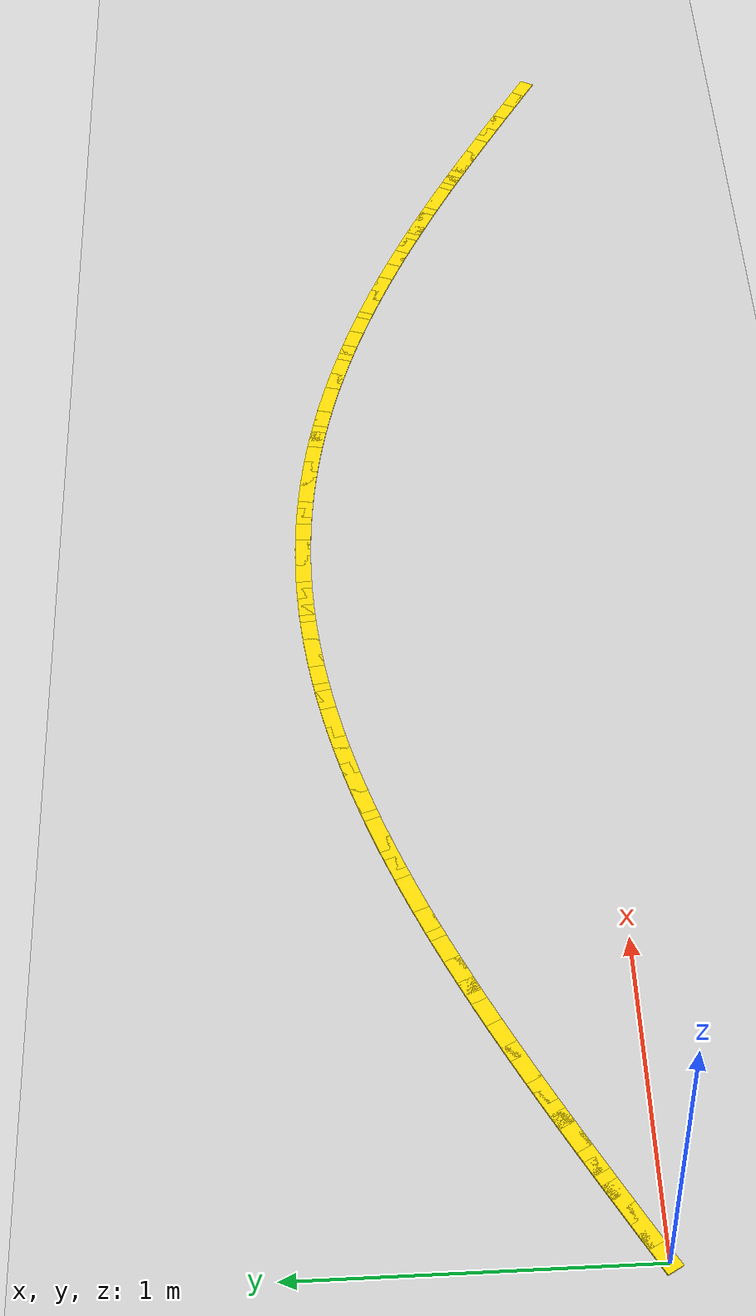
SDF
<?xml version="1.0" ?>
<sdf version="1.6">
  <world name="yahboom_line">

    <include><uri>model://sun</uri></include>
    <include><uri>model://ground_plane</uri></include>

    <scene>
      <ambient>0.6 0.6 0.6 1</ambient>
      <background>0.7 0.7 0.7 1</background>
      <shadows>false</shadows>
    </scene>

    <model name="line_0">
      <static>true</static>
      <pose>0.0357 0.0202 0.003 0 0 0.5145</pose>
      <link name="link">
        <visual name="v">
          <geometry><box><size>0.1313 0.05 0.006</size></box></geometry>
          <material><ambient>1 0.85 0 1</ambient><diffuse>1 0.85 0 1</diffuse></material>
        </visual>
      </link>
    </model>
    <model name="line_1">
      <static>true</static>
      <pose>0.1071 0.0605 0.003 0 0 0.5136</pose>
      <link name="link">
        <visual name="v">
          <geometry><box><size>0.1312 0.05 0.006</size></box></geometry>
          <material><ambient>1 0.85 0 1</ambient><diffuse>1 0.85 0 1</diffuse></material>
        </visual>
      </link>
    </model>
    <model name="line_2">
      <static>true</static>
      <pose>0.1786 0.1007 0.003 0 0 0.5119</pose>
      <link name="link">
        <visual name="v">
          <geometry><box><size>0.1311 0.05 0.006</size></box></geometry>
          <material><ambient>1 0.85 0 1</ambient><diffuse>1 0.85 0 1</diffuse></material>
        </visual>
      </link>
    </model>
    <model name="line_3">
      <static>true</static>
      <pose>0.2500 0.1408 0.003 0 0 0.5093</pose>
      <link name="link">
        <visual name="v">
          <geometry><box><size>0.1309 0.05 0.006</size></box></geometry>
          <material><ambient>1 0.85 0 1</ambient><diffuse>1 0.85 0 1</diffuse></material>
        </visual>
      </link>
    </model>
    <model name="line_4">
      <static>true</static>
      <pose>0.3214 0.1805 0.003 0 0 0.5059</pose>
      <link name="link">
        <visual name="v">
          <geometry><box><size>0.1306 0.05 0.006</size></box></geometry>
          <material><ambient>1 0.85 0 1</ambient><diffuse>1 0.85 0 1</diffuse></material>
        </visual>
      </link>
    </model>
    <model name="line_5">
      <static>true</static>
      <pose>0.3929 0.2199 0.003 0 0 0.5015</pose>
      <link name="link">
        <visual name="v">
          <geometry><box><size>0.1303 0.05 0.006</size></box></geometry>
          <material><ambient>1 0.85 0 1</ambient><diffuse>1 0.85 0 1</diffuse></material>
        </visual>
      </link>
    </model>
    <model name="line_6">
      <static>true</static>
      <pose>0.4643 0.2588 0.003 0 0 0.4963</pose>
      <link name="link">
        <visual name="v">
          <geometry><box><size>0.1300 0.05 0.006</size></box></geometry>
          <material><ambient>1 0.85 0 1</ambient><diffuse>1 0.85 0 1</diffuse></material>
        </visual>
      </link>
    </model>
    <model name="line_7">
      <static>true</static>
      <pose>0.5357 0.2972 0.003 0 0 0.4902</pose>
      <link name="link">
        <visual name="v">
          <geometry><box><size>0.1295 0.05 0.006</size></box></geometry>
          <material><ambient>1 0.85 0 1</ambient><diffuse>1 0.85 0 1</diffuse></material>
        </visual>
      </link>
    </model>
    <model name="line_8">
      <static>true</static>
      <pose>0.6071 0.3350 0.003 0 0 0.4833</pose>
      <link name="link">
        <visual name="v">
          <geometry><box><size>0.1291 0.05 0.006</size></box></geometry>
          <material><ambient>1 0.85 0 1</ambient><diffuse>1 0.85 0 1</diffuse></material>
        </visual>
      </link>
    </model>
    <model name="line_9">
      <static>true</static>
      <pose>0.6786 0.3721 0.003 0 0 0.4754</pose>
      <link name="link">
        <visual name="v">
          <geometry><box><size>0.1285 0.05 0.006</size></box></geometry>
          <material><ambient>1 0.85 0 1</ambient><diffuse>1 0.85 0 1</diffuse></material>
        </visual>
      </link>
    </model>
    <model name="line_10">
      <static>true</static>
      <pose>0.7500 0.4085 0.003 0 0 0.4667</pose>
      <link name="link">
        <visual name="v">
          <geometry><box><size>0.1280 0.05 0.006</size></box></geometry>
          <material><ambient>1 0.85 0 1</ambient><diffuse>1 0.85 0 1</diffuse></material>
        </visual>
      </link>
    </model>
    <model name="line_11">
      <static>true</static>
      <pose>0.8214 0.4440 0.003 0 0 0.4571</pose>
      <link name="link">
        <visual name="v">
          <geometry><box><size>0.1274 0.05 0.006</size></box></geometry>
          <material><ambient>1 0.85 0 1</ambient><diffuse>1 0.85 0 1</diffuse></material>
        </visual>
      </link>
    </model>
    <model name="line_12">
      <static>true</static>
      <pose>0.8929 0.4787 0.003 0 0 0.4465</pose>
      <link name="link">
        <visual name="v">
          <geometry><box><size>0.1267 0.05 0.006</size></box></geometry>
          <material><ambient>1 0.85 0 1</ambient><diffuse>1 0.85 0 1</diffuse></material>
        </visual>
      </link>
    </model>
    <model name="line_13">
      <static>true</static>
      <pose>0.9643 0.5124 0.003 0 0 0.4351</pose>
      <link name="link">
        <visual name="v">
          <geometry><box><size>0.1260 0.05 0.006</size></box></geometry>
          <material><ambient>1 0.85 0 1</ambient><diffuse>1 0.85 0 1</diffuse></material>
        </visual>
      </link>
    </model>
    <model name="line_14">
      <static>true</static>
      <pose>1.0357 0.5451 0.003 0 0 0.4228</pose>
      <link name="link">
        <visual name="v">
          <geometry><box><size>0.1253 0.05 0.006</size></box></geometry>
          <material><ambient>1 0.85 0 1</ambient><diffuse>1 0.85 0 1</diffuse></material>
        </visual>
      </link>
    </model>
    <model name="line_15">
      <static>true</static>
      <pose>1.1071 0.5766 0.003 0 0 0.4095</pose>
      <link name="link">
        <visual name="v">
          <geometry><box><size>0.1246 0.05 0.006</size></box></geometry>
          <material><ambient>1 0.85 0 1</ambient><diffuse>1 0.85 0 1</diffuse></material>
        </visual>
      </link>
    </model>
    <model name="line_16">
      <static>true</static>
      <pose>1.1786 0.6071 0.003 0 0 0.3954</pose>
      <link name="link">
        <visual name="v">
          <geometry><box><size>0.1238 0.05 0.006</size></box></geometry>
          <material><ambient>1 0.85 0 1</ambient><diffuse>1 0.85 0 1</diffuse></material>
        </visual>
      </link>
    </model>
    <model name="line_17">
      <static>true</static>
      <pose>1.2500 0.6362 0.003 0 0 0.3804</pose>
      <link name="link">
        <visual name="v">
          <geometry><box><size>0.1231 0.05 0.006</size></box></geometry>
          <material><ambient>1 0.85 0 1</ambient><diffuse>1 0.85 0 1</diffuse></material>
        </visual>
      </link>
    </model>
    <model name="line_18">
      <static>true</static>
      <pose>1.3214 0.6641 0.003 0 0 0.3644</pose>
      <link name="link">
        <visual name="v">
          <geometry><box><size>0.1223 0.05 0.006</size></box></geometry>
          <material><ambient>1 0.85 0 1</ambient><diffuse>1 0.85 0 1</diffuse></material>
        </visual>
      </link>
    </model>
    <model name="line_19">
      <static>true</static>
      <pose>1.3929 0.6907 0.003 0 0 0.3477</pose>
      <link name="link">
        <visual name="v">
          <geometry><box><size>0.1216 0.05 0.006</size></box></geometry>
          <material><ambient>1 0.85 0 1</ambient><diffuse>1 0.85 0 1</diffuse></material>
        </visual>
      </link>
    </model>
    <model name="line_20">
      <static>true</static>
      <pose>1.4643 0.7159 0.003 0 0 0.3300</pose>
      <link name="link">
        <visual name="v">
          <geometry><box><size>0.1208 0.05 0.006</size></box></geometry>
          <material><ambient>1 0.85 0 1</ambient><diffuse>1 0.85 0 1</diffuse></material>
        </visual>
      </link>
    </model>
    <model name="line_21">
      <static>true</static>
      <pose>1.5357 0.7396 0.003 0 0 0.3115</pose>
      <link name="link">
        <visual name="v">
          <geometry><box><size>0.1201 0.05 0.006</size></box></geometry>
          <material><ambient>1 0.85 0 1</ambient><diffuse>1 0.85 0 1</diffuse></material>
        </visual>
      </link>
    </model>
    <model name="line_22">
      <static>true</static>
      <pose>1.6071 0.7619 0.003 0 0 0.2922</pose>
      <link name="link">
        <visual name="v">
          <geometry><box><size>0.1193 0.05 0.006</size></box></geometry>
          <material><ambient>1 0.85 0 1</ambient><diffuse>1 0.85 0 1</diffuse></material>
        </visual>
      </link>
    </model>
    <model name="line_23">
      <static>true</static>
      <pose>1.6786 0.7826 0.003 0 0 0.2721</pose>
      <link name="link">
        <visual name="v">
          <geometry><box><size>0.1187 0.05 0.006</size></box></geometry>
          <material><ambient>1 0.85 0 1</ambient><diffuse>1 0.85 0 1</diffuse></material>
        </visual>
      </link>
    </model>
    <model name="line_24">
      <static>true</static>
      <pose>1.7500 0.8017 0.003 0 0 0.2513</pose>
      <link name="link">
        <visual name="v">
          <geometry><box><size>0.1180 0.05 0.006</size></box></geometry>
          <material><ambient>1 0.85 0 1</ambient><diffuse>1 0.85 0 1</diffuse></material>
        </visual>
      </link>
    </model>
    <model name="line_25">
      <static>true</static>
      <pose>1.8214 0.8192 0.003 0 0 0.2297</pose>
      <link name="link">
        <visual name="v">
          <geometry><box><size>0.1174 0.05 0.006</size></box></geometry>
          <material><ambient>1 0.85 0 1</ambient><diffuse>1 0.85 0 1</diffuse></material>
        </visual>
      </link>
    </model>
    <model name="line_26">
      <static>true</static>
      <pose>1.8929 0.8351 0.003 0 0 0.2075</pose>
      <link name="link">
        <visual name="v">
          <geometry><box><size>0.1168 0.05 0.006</size></box></geometry>
          <material><ambient>1 0.85 0 1</ambient><diffuse>1 0.85 0 1</diffuse></material>
        </visual>
      </link>
    </model>
    <model name="line_27">
      <static>true</static>
      <pose>1.9643 0.8493 0.003 0 0 0.1846</pose>
      <link name="link">
        <visual name="v">
          <geometry><box><size>0.1163 0.05 0.006</size></box></geometry>
          <material><ambient>1 0.85 0 1</ambient><diffuse>1 0.85 0 1</diffuse></material>
        </visual>
      </link>
    </model>
    <model name="line_28">
      <static>true</static>
      <pose>2.0357 0.8618 0.003 0 0 0.1612</pose>
      <link name="link">
        <visual name="v">
          <geometry><box><size>0.1158 0.05 0.006</size></box></geometry>
          <material><ambient>1 0.85 0 1</ambient><diffuse>1 0.85 0 1</diffuse></material>
        </visual>
      </link>
    </model>
    <model name="line_29">
      <static>true</static>
      <pose>2.1071 0.8725 0.003 0 0 0.1373</pose>
      <link name="link">
        <visual name="v">
          <geometry><box><size>0.1154 0.05 0.006</size></box></geometry>
          <material><ambient>1 0.85 0 1</ambient><diffuse>1 0.85 0 1</diffuse></material>
        </visual>
      </link>
    </model>
    <model name="line_30">
      <static>true</static>
      <pose>2.1786 0.8815 0.003 0 0 0.1129</pose>
      <link name="link">
        <visual name="v">
          <geometry><box><size>0.1150 0.05 0.006</size></box></geometry>
          <material><ambient>1 0.85 0 1</ambient><diffuse>1 0.85 0 1</diffuse></material>
        </visual>
      </link>
    </model>
    <model name="line_31">
      <static>true</static>
      <pose>2.2500 0.8887 0.003 0 0 0.0882</pose>
      <link name="link">
        <visual name="v">
          <geometry><box><size>0.1147 0.05 0.006</size></box></geometry>
          <material><ambient>1 0.85 0 1</ambient><diffuse>1 0.85 0 1</diffuse></material>
        </visual>
      </link>
    </model>
    <model name="line_32">
      <static>true</static>
      <pose>2.3214 0.8941 0.003 0 0 0.0632</pose>
      <link name="link">
        <visual name="v">
          <geometry><box><size>0.1145 0.05 0.006</size></box></geometry>
          <material><ambient>1 0.85 0 1</ambient><diffuse>1 0.85 0 1</diffuse></material>
        </visual>
      </link>
    </model>
    <model name="line_33">
      <static>true</static>
      <pose>2.3929 0.8977 0.003 0 0 0.0380</pose>
      <link name="link">
        <visual name="v">
          <geometry><box><size>0.1144 0.05 0.006</size></box></geometry>
          <material><ambient>1 0.85 0 1</ambient><diffuse>1 0.85 0 1</diffuse></material>
        </visual>
      </link>
    </model>
    <model name="line_34">
      <static>true</static>
      <pose>2.4643 0.8995 0.003 0 0 0.0127</pose>
      <link name="link">
        <visual name="v">
          <geometry><box><size>0.1143 0.05 0.006</size></box></geometry>
          <material><ambient>1 0.85 0 1</ambient><diffuse>1 0.85 0 1</diffuse></material>
        </visual>
      </link>
    </model>
    <model name="line_35">
      <static>true</static>
      <pose>2.5357 0.8995 0.003 0 0 -0.0127</pose>
      <link name="link">
        <visual name="v">
          <geometry><box><size>0.1143 0.05 0.006</size></box></geometry>
          <material><ambient>1 0.85 0 1</ambient><diffuse>1 0.85 0 1</diffuse></material>
        </visual>
      </link>
    </model>
    <model name="line_36">
      <static>true</static>
      <pose>2.6071 0.8977 0.003 0 0 -0.0380</pose>
      <link name="link">
        <visual name="v">
          <geometry><box><size>0.1144 0.05 0.006</size></box></geometry>
          <material><ambient>1 0.85 0 1</ambient><diffuse>1 0.85 0 1</diffuse></material>
        </visual>
      </link>
    </model>
    <model name="line_37">
      <static>true</static>
      <pose>2.6786 0.8941 0.003 0 0 -0.0632</pose>
      <link name="link">
        <visual name="v">
          <geometry><box><size>0.1145 0.05 0.006</size></box></geometry>
          <material><ambient>1 0.85 0 1</ambient><diffuse>1 0.85 0 1</diffuse></material>
        </visual>
      </link>
    </model>
    <model name="line_38">
      <static>true</static>
      <pose>2.7500 0.8887 0.003 0 0 -0.0882</pose>
      <link name="link">
        <visual name="v">
          <geometry><box><size>0.1147 0.05 0.006</size></box></geometry>
          <material><ambient>1 0.85 0 1</ambient><diffuse>1 0.85 0 1</diffuse></material>
        </visual>
      </link>
    </model>
    <model name="line_39">
      <static>true</static>
      <pose>2.8214 0.8815 0.003 0 0 -0.1129</pose>
      <link name="link">
        <visual name="v">
          <geometry><box><size>0.1150 0.05 0.006</size></box></geometry>
          <material><ambient>1 0.85 0 1</ambient><diffuse>1 0.85 0 1</diffuse></material>
        </visual>
      </link>
    </model>
    <model name="line_40">
      <static>true</static>
      <pose>2.8929 0.8725 0.003 0 0 -0.1373</pose>
      <link name="link">
        <visual name="v">
          <geometry><box><size>0.1154 0.05 0.006</size></box></geometry>
          <material><ambient>1 0.85 0 1</ambient><diffuse>1 0.85 0 1</diffuse></material>
        </visual>
      </link>
    </model>
    <model name="line_41">
      <static>true</static>
      <pose>2.9643 0.8618 0.003 0 0 -0.1612</pose>
      <link name="link">
        <visual name="v">
          <geometry><box><size>0.1158 0.05 0.006</size></box></geometry>
          <material><ambient>1 0.85 0 1</ambient><diffuse>1 0.85 0 1</diffuse></material>
        </visual>
      </link>
    </model>
    <model name="line_42">
      <static>true</static>
      <pose>3.0357 0.8493 0.003 0 0 -0.1846</pose>
      <link name="link">
        <visual name="v">
          <geometry><box><size>0.1163 0.05 0.006</size></box></geometry>
          <material><ambient>1 0.85 0 1</ambient><diffuse>1 0.85 0 1</diffuse></material>
        </visual>
      </link>
    </model>
    <model name="line_43">
      <static>true</static>
      <pose>3.1071 0.8351 0.003 0 0 -0.2075</pose>
      <link name="link">
        <visual name="v">
          <geometry><box><size>0.1168 0.05 0.006</size></box></geometry>
          <material><ambient>1 0.85 0 1</ambient><diffuse>1 0.85 0 1</diffuse></material>
        </visual>
      </link>
    </model>
    <model name="line_44">
      <static>true</static>
      <pose>3.1786 0.8192 0.003 0 0 -0.2297</pose>
      <link name="link">
        <visual name="v">
          <geometry><box><size>0.1174 0.05 0.006</size></box></geometry>
          <material><ambient>1 0.85 0 1</ambient><diffuse>1 0.85 0 1</diffuse></material>
        </visual>
      </link>
    </model>
    <model name="line_45">
      <static>true</static>
      <pose>3.2500 0.8017 0.003 0 0 -0.2513</pose>
      <link name="link">
        <visual name="v">
          <geometry><box><size>0.1180 0.05 0.006</size></box></geometry>
          <material><ambient>1 0.85 0 1</ambient><diffuse>1 0.85 0 1</diffuse></material>
        </visual>
      </link>
    </model>
    <model name="line_46">
      <static>true</static>
      <pose>3.3214 0.7826 0.003 0 0 -0.2721</pose>
      <link name="link">
        <visual name="v">
          <geometry><box><size>0.1187 0.05 0.006</size></box></geometry>
          <material><ambient>1 0.85 0 1</ambient><diffuse>1 0.85 0 1</diffuse></material>
        </visual>
      </link>
    </model>
    <model name="line_47">
      <static>true</static>
      <pose>3.3929 0.7619 0.003 0 0 -0.2922</pose>
      <link name="link">
        <visual name="v">
          <geometry><box><size>0.1193 0.05 0.006</size></box></geometry>
          <material><ambient>1 0.85 0 1</ambient><diffuse>1 0.85 0 1</diffuse></material>
        </visual>
      </link>
    </model>
    <model name="line_48">
      <static>true</static>
      <pose>3.4643 0.7396 0.003 0 0 -0.3115</pose>
      <link name="link">
        <visual name="v">
          <geometry><box><size>0.1201 0.05 0.006</size></box></geometry>
          <material><ambient>1 0.85 0 1</ambient><diffuse>1 0.85 0 1</diffuse></material>
        </visual>
      </link>
    </model>
    <model name="line_49">
      <static>true</static>
      <pose>3.5357 0.7159 0.003 0 0 -0.3300</pose>
      <link name="link">
        <visual name="v">
          <geometry><box><size>0.1208 0.05 0.006</size></box></geometry>
          <material><ambient>1 0.85 0 1</ambient><diffuse>1 0.85 0 1</diffuse></material>
        </visual>
      </link>
    </model>
    <model name="line_50">
      <static>true</static>
      <pose>3.6071 0.6907 0.003 0 0 -0.3477</pose>
      <link name="link">
        <visual name="v">
          <geometry><box><size>0.1216 0.05 0.006</size></box></geometry>
          <material><ambient>1 0.85 0 1</ambient><diffuse>1 0.85 0 1</diffuse></material>
        </visual>
      </link>
    </model>
    <model name="line_51">
      <static>true</static>
      <pose>3.6786 0.6641 0.003 0 0 -0.3644</pose>
      <link name="link">
        <visual name="v">
          <geometry><box><size>0.1223 0.05 0.006</size></box></geometry>
          <material><ambient>1 0.85 0 1</ambient><diffuse>1 0.85 0 1</diffuse></material>
        </visual>
      </link>
    </model>
    <model name="line_52">
      <static>true</static>
      <pose>3.7500 0.6362 0.003 0 0 -0.3804</pose>
      <link name="link">
        <visual name="v">
          <geometry><box><size>0.1231 0.05 0.006</size></box></geometry>
          <material><ambient>1 0.85 0 1</ambient><diffuse>1 0.85 0 1</diffuse></material>
        </visual>
      </link>
    </model>
    <model name="line_53">
      <static>true</static>
      <pose>3.8214 0.6071 0.003 0 0 -0.3954</pose>
      <link name="link">
        <visual name="v">
          <geometry><box><size>0.1238 0.05 0.006</size></box></geometry>
          <material><ambient>1 0.85 0 1</ambient><diffuse>1 0.85 0 1</diffuse></material>
        </visual>
      </link>
    </model>
    <model name="line_54">
      <static>true</static>
      <pose>3.8929 0.5766 0.003 0 0 -0.4095</pose>
      <link name="link">
        <visual name="v">
          <geometry><box><size>0.1246 0.05 0.006</size></box></geometry>
          <material><ambient>1 0.85 0 1</ambient><diffuse>1 0.85 0 1</diffuse></material>
        </visual>
      </link>
    </model>
    <model name="line_55">
      <static>true</static>
      <pose>3.9643 0.5451 0.003 0 0 -0.4228</pose>
      <link name="link">
        <visual name="v">
          <geometry><box><size>0.1253 0.05 0.006</size></box></geometry>
          <material><ambient>1 0.85 0 1</ambient><diffuse>1 0.85 0 1</diffuse></material>
        </visual>
      </link>
    </model>
    <model name="line_56">
      <static>true</static>
      <pose>4.0357 0.5124 0.003 0 0 -0.4351</pose>
      <link name="link">
        <visual name="v">
          <geometry><box><size>0.1260 0.05 0.006</size></box></geometry>
          <material><ambient>1 0.85 0 1</ambient><diffuse>1 0.85 0 1</diffuse></material>
        </visual>
      </link>
    </model>
    <model name="line_57">
      <static>true</static>
      <pose>4.1071 0.4787 0.003 0 0 -0.4465</pose>
      <link name="link">
        <visual name="v">
          <geometry><box><size>0.1267 0.05 0.006</size></box></geometry>
          <material><ambient>1 0.85 0 1</ambient><diffuse>1 0.85 0 1</diffuse></material>
        </visual>
      </link>
    </model>
    <model name="line_58">
      <static>true</static>
      <pose>4.1786 0.4440 0.003 0 0 -0.4571</pose>
      <link name="link">
        <visual name="v">
          <geometry><box><size>0.1274 0.05 0.006</size></box></geometry>
          <material><ambient>1 0.85 0 1</ambient><diffuse>1 0.85 0 1</diffuse></material>
        </visual>
      </link>
    </model>
    <model name="line_59">
      <static>true</static>
      <pose>4.2500 0.4085 0.003 0 0 -0.4667</pose>
      <link name="link">
        <visual name="v">
          <geometry><box><size>0.1280 0.05 0.006</size></box></geometry>
          <material><ambient>1 0.85 0 1</ambient><diffuse>1 0.85 0 1</diffuse></material>
        </visual>
      </link>
    </model>
    <model name="line_60">
      <static>true</static>
      <pose>4.3214 0.3721 0.003 0 0 -0.4754</pose>
      <link name="link">
        <visual name="v">
          <geometry><box><size>0.1285 0.05 0.006</size></box></geometry>
          <material><ambient>1 0.85 0 1</ambient><diffuse>1 0.85 0 1</diffuse></material>
        </visual>
      </link>
    </model>
    <model name="line_61">
      <static>true</static>
      <pose>4.3929 0.3350 0.003 0 0 -0.4833</pose>
      <link name="link">
        <visual name="v">
          <geometry><box><size>0.1291 0.05 0.006</size></box></geometry>
          <material><ambient>1 0.85 0 1</ambient><diffuse>1 0.85 0 1</diffuse></material>
        </visual>
      </link>
    </model>
    <model name="line_62">
      <static>true</static>
      <pose>4.4643 0.2972 0.003 0 0 -0.4902</pose>
      <link name="link">
        <visual name="v">
          <geometry><box><size>0.1295 0.05 0.006</size></box></geometry>
          <material><ambient>1 0.85 0 1</ambient><diffuse>1 0.85 0 1</diffuse></material>
        </visual>
      </link>
    </model>
    <model name="line_63">
      <static>true</static>
      <pose>4.5357 0.2588 0.003 0 0 -0.4963</pose>
      <link name="link">
        <visual name="v">
          <geometry><box><size>0.1300 0.05 0.006</size></box></geometry>
          <material><ambient>1 0.85 0 1</ambient><diffuse>1 0.85 0 1</diffuse></material>
        </visual>
      </link>
    </model>
    <model name="line_64">
      <static>true</static>
      <pose>4.6071 0.2199 0.003 0 0 -0.5015</pose>
      <link name="link">
        <visual name="v">
          <geometry><box><size>0.1303 0.05 0.006</size></box></geometry>
          <material><ambient>1 0.85 0 1</ambient><diffuse>1 0.85 0 1</diffuse></material>
        </visual>
      </link>
    </model>
    <model name="line_65">
      <static>true</static>
      <pose>4.6786 0.1805 0.003 0 0 -0.5059</pose>
      <link name="link">
        <visual name="v">
          <geometry><box><size>0.1306 0.05 0.006</size></box></geometry>
          <material><ambient>1 0.85 0 1</ambient><diffuse>1 0.85 0 1</diffuse></material>
        </visual>
      </link>
    </model>
    <model name="line_66">
      <static>true</static>
      <pose>4.7500 0.1408 0.003 0 0 -0.5093</pose>
      <link name="link">
        <visual name="v">
          <geometry><box><size>0.1309 0.05 0.006</size></box></geometry>
          <material><ambient>1 0.85 0 1</ambient><diffuse>1 0.85 0 1</diffuse></material>
        </visual>
      </link>
    </model>
    <model name="line_67">
      <static>true</static>
      <pose>4.8214 0.1007 0.003 0 0 -0.5119</pose>
      <link name="link">
        <visual name="v">
          <geometry><box><size>0.1311 0.05 0.006</size></box></geometry>
          <material><ambient>1 0.85 0 1</ambient><diffuse>1 0.85 0 1</diffuse></material>
        </visual>
      </link>
    </model>
    <model name="line_68">
      <static>true</static>
      <pose>4.8929 0.0605 0.003 0 0 -0.5136</pose>
      <link name="link">
        <visual name="v">
          <geometry><box><size>0.1312 0.05 0.006</size></box></geometry>
          <material><ambient>1 0.85 0 1</ambient><diffuse>1 0.85 0 1</diffuse></material>
        </visual>
      </link>
    </model>
    <model name="line_69">
      <static>true</static>
      <pose>4.9643 0.0202 0.003 0 0 -0.5145</pose>
      <link name="link">
        <visual name="v">
          <geometry><box><size>0.1313 0.05 0.006</size></box></geometry>
          <material><ambient>1 0.85 0 1</ambient><diffuse>1 0.85 0 1</diffuse></material>
        </visual>
      </link>
    </model>

    <physics name="default_physics" default="true" type="ode">
      <max_step_size>0.001</max_step_size>
      <real_time_factor>1.0</real_time_factor>
      <real_time_update_rate>1000</real_time_update_rate>
    </physics>

  </world>
</sdf>
